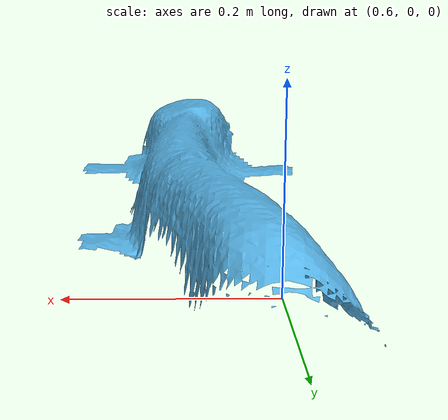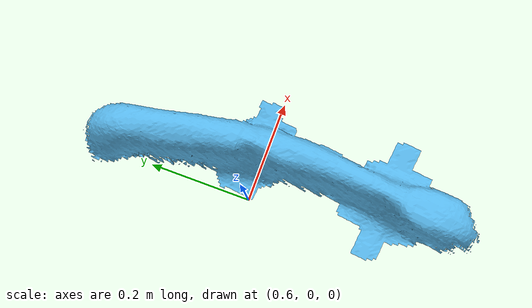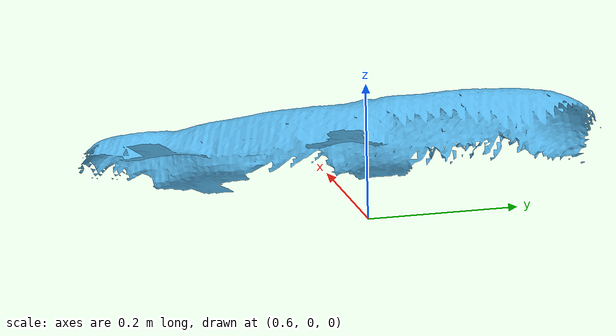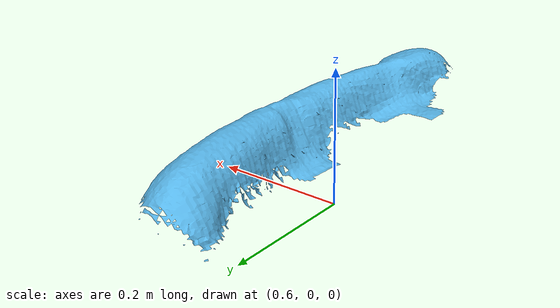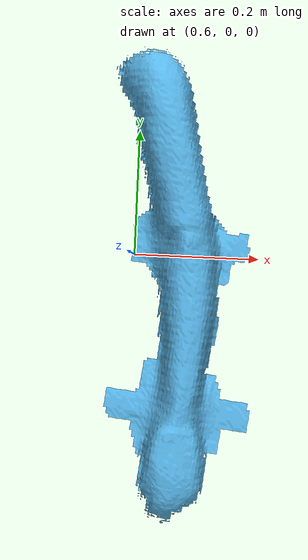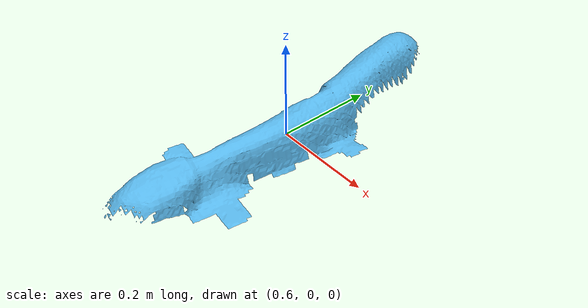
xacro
<?xml version="1.0" encoding="utf-8"?>
<robot xmlns:xacro="http://www.ros.org/wiki/xacro" name="arm_mold">

  <!-- Import all Gazebo-customization elements, including Gazebo colors -->
  <xacro:include filename="$(find franka_description)/arm_simulation/molds/arm_mold.gazebo" />

  <!-- Used for fixing mold to Gazebo 'base_link' -->
  <link name="world"/>
  <joint name="mold_to_world" type="fixed">
    <parent link="world"/>
    <child link="arm_mold"/>
    <origin xyz="0.6765 -0.0505 0.1000" rpy="0.0 0.0 0.0" /> <!-- xyz="0.585994 0.1 0.2477107" -->
    <dynamics damping="1.0" friction="0.0"/>
  </joint>

  <!-- arm_mold Link -->
  <link name="arm_mold">
    <visual>
      <origin xyz="0.0 0.0 0.0" rpy="0.0 0.0 0.0"/>
      <geometry>
        <mesh filename="package://franka_description/meshes/visual/Manequim.dae"/>
      </geometry>
    </visual>
    <collision>
      <origin xyz="0.0 0.0 0.0" rpy="0.0 0.0 0.0"/>
      <geometry>
        <mesh filename="package://franka_description/meshes/collision/Manequim.stl"/>
      </geometry>
    </collision>
    <inertial>
      <origin xyz="0.0 0.0 0.0" rpy="0.0 0.0 0.0"/>
      <mass value="50"/>
      <inertia ixx="1.0" ixy="0.0" ixz="0.0" iyy="1.0" iyz="0.0" izz="1.0"/>
    </inertial>
  </link>

</robot>
